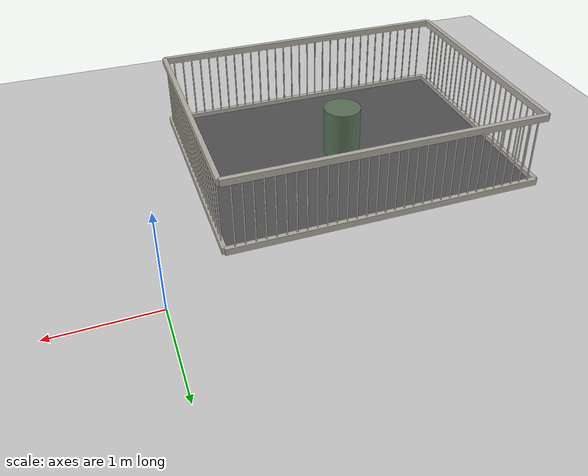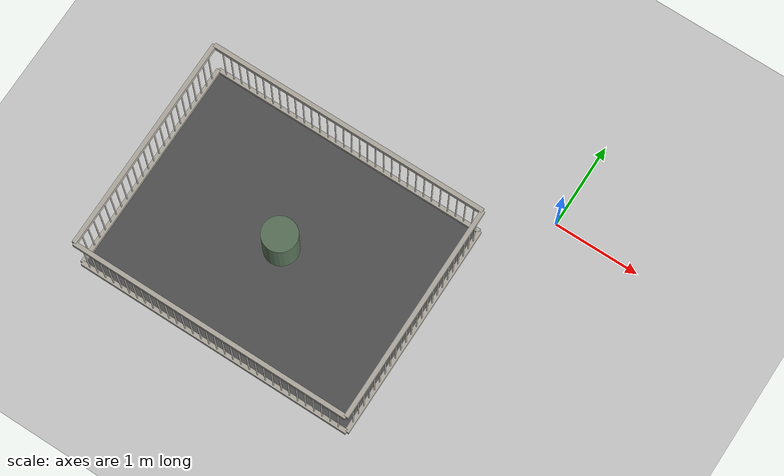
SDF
<sdf version="1.9">
 <world name="pig_pen_16units_world">
  <model name="ground_plane">
   <static>true</static>
   <link name="link">
    <collision name="collision">
     <geometry><plane><normal>0 0 1</normal><size>30 30</size></plane></geometry>
     <surface><friction><ode><mu>1.0</mu><mu2>1.0</mu2></ode></friction></surface>
    </collision>
    <visual name="visual">
     <geometry><plane><normal>0 0 1</normal><size>30 30</size></plane></geometry>
     <material>
      <ambient>0.8 0.8 0.8 1</ambient>
      <diffuse>0.8 0.8 0.8 1</diffuse>
      <specular>0.2 0.2 0.2 1</specular>
     </material>
    </visual>
   </link>
  </model>
  <model name="pen3">
   <pose>-2.275 -1.795 0 0 0 0</pose>
   <static>true</static>
   <link name="floor">
    <pose>0 0 0.01 0 0 0</pose>
    <collision name="collision"><geometry><box><size>3.30 2.55 0.02</size></box></geometry></collision>
    <visual name="visual">
     <geometry><box><size>3.30 2.55 0.02</size></box></geometry>
     <material>
      <ambient>0.25 0.25 0.25 1</ambient>
      <diffuse>0.32 0.32 0.32 1</diffuse>
      <specular>0.05 0.05 0.05 1</specular>
     </material>
    </visual>
   </link>
   <link name="left_wall">
    <pose>0 1.275 0.415 0 0 0</pose>
    <collision name="top_rail_col">
     <pose>0 0 0.38 0 0 0</pose>
     <geometry><box><size>3.30 0.05 0.07</size></box></geometry>
    </collision>
    <visual name="top_rail_vis">
     <pose>0 0 0.38 0 0 0</pose>
     <geometry><box><size>3.30 0.05 0.07</size></box></geometry>
     <material><ambient>0.70 0.68 0.64 1</ambient><diffuse>0.70 0.68 0.64 1</diffuse></material>
    </visual>
    <collision name="bottom_rail_col">
     <pose>0 0 -0.38 0 0 0</pose>
     <geometry><box><size>3.30 0.05 0.07</size></box></geometry>
    </collision>
    <visual name="bottom_rail_vis">
     <pose>0 0 -0.38 0 0 0</pose>
     <geometry><box><size>3.30 0.05 0.07</size></box></geometry>
     <material><ambient>0.70 0.68 0.64 1</ambient><diffuse>0.70 0.68 0.64 1</diffuse></material>
    </visual>
    <collision name="bar_01_col">
     <pose>-1.55 0 0 0 0 0</pose>
     <geometry><cylinder><radius>0.0075</radius><length>0.69</length></cylinder></geometry>
    </collision>
    <visual name="bar_01_vis">
     <pose>-1.55 0 0 0 0 0</pose>
     <geometry><cylinder><radius>0.0075</radius><length>0.69</length></cylinder></geometry>
     <material><ambient>0.70 0.68 0.64 1</ambient><diffuse>0.70 0.68 0.64 1</diffuse></material>
    </visual>
    <collision name="bar_02_col">
     <pose>-1.45 0 0 0 0 0</pose>
     <geometry><cylinder><radius>0.0075</radius><length>0.69</length></cylinder></geometry>
    </collision>
    <visual name="bar_02_vis">
     <pose>-1.45 0 0 0 0 0</pose>
     <geometry><cylinder><radius>0.0075</radius><length>0.69</length></cylinder></geometry>
     <material><ambient>0.70 0.68 0.64 1</ambient><diffuse>0.70 0.68 0.64 1</diffuse></material>
    </visual>
    <collision name="bar_03_col">
     <pose>-1.35 0 0 0 0 0</pose>
     <geometry><cylinder><radius>0.0075</radius><length>0.69</length></cylinder></geometry>
    </collision>
    <visual name="bar_03_vis">
     <pose>-1.35 0 0 0 0 0</pose>
     <geometry><cylinder><radius>0.0075</radius><length>0.69</length></cylinder></geometry>
     <material><ambient>0.70 0.68 0.64 1</ambient><diffuse>0.70 0.68 0.64 1</diffuse></material>
    </visual>
    <collision name="bar_04_col">
     <pose>-1.25 0 0 0 0 0</pose>
     <geometry><cylinder><radius>0.0075</radius><length>0.69</length></cylinder></geometry>
    </collision>
    <visual name="bar_04_vis">
     <pose>-1.25 0 0 0 0 0</pose>
     <geometry><cylinder><radius>0.0075</radius><length>0.69</length></cylinder></geometry>
     <material><ambient>0.70 0.68 0.64 1</ambient><diffuse>0.70 0.68 0.64 1</diffuse></material>
    </visual>
    <collision name="bar_05_col">
     <pose>-1.15 0 0 0 0 0</pose>
     <geometry><cylinder><radius>0.0075</radius><length>0.69</length></cylinder></geometry>
    </collision>
    <visual name="bar_05_vis">
     <pose>-1.15 0 0 0 0 0</pose>
     <geometry><cylinder><radius>0.0075</radius><length>0.69</length></cylinder></geometry>
     <material><ambient>0.70 0.68 0.64 1</ambient><diffuse>0.70 0.68 0.64 1</diffuse></material>
    </visual>
    <collision name="bar_06_col">
     <pose>-1.05 0 0 0 0 0</pose>
     <geometry><cylinder><radius>0.0075</radius><length>0.69</length></cylinder></geometry>
    </collision>
    <visual name="bar_06_vis">
     <pose>-1.05 0 0 0 0 0</pose>
     <geometry><cylinder><radius>0.0075</radius><length>0.69</length></cylinder></geometry>
     <material><ambient>0.70 0.68 0.64 1</ambient><diffuse>0.70 0.68 0.64 1</diffuse></material>
    </visual>
    <collision name="bar_07_col">
     <pose>-0.95 0 0 0 0 0</pose>
     <geometry><cylinder><radius>0.0075</radius><length>0.69</length></cylinder></geometry>
    </collision>
    <visual name="bar_07_vis">
     <pose>-0.95 0 0 0 0 0</pose>
     <geometry><cylinder><radius>0.0075</radius><length>0.69</length></cylinder></geometry>
     <material><ambient>0.70 0.68 0.64 1</ambient><diffuse>0.70 0.68 0.64 1</diffuse></material>
    </visual>
    <collision name="bar_08_col">
     <pose>-0.85 0 0 0 0 0</pose>
     <geometry><cylinder><radius>0.0075</radius><length>0.69</length></cylinder></geometry>
    </collision>
    <visual name="bar_08_vis">
     <pose>-0.85 0 0 0 0 0</pose>
     <geometry><cylinder><radius>0.0075</radius><length>0.69</length></cylinder></geometry>
     <material><ambient>0.70 0.68 0.64 1</ambient><diffuse>0.70 0.68 0.64 1</diffuse></material>
    </visual>
    <collision name="bar_09_col">
     <pose>-0.75 0 0 0 0 0</pose>
     <geometry><cylinder><radius>0.0075</radius><length>0.69</length></cylinder></geometry>
    </collision>
    <visual name="bar_09_vis">
     <pose>-0.75 0 0 0 0 0</pose>
     <geometry><cylinder><radius>0.0075</radius><length>0.69</length></cylinder></geometry>
     <material><ambient>0.70 0.68 0.64 1</ambient><diffuse>0.70 0.68 0.64 1</diffuse></material>
    </visual>
    <collision name="bar_10_col">
     <pose>-0.65 0 0 0 0 0</pose>
     <geometry><cylinder><radius>0.0075</radius><length>0.69</length></cylinder></geometry>
    </collision>
    <visual name="bar_10_vis">
     <pose>-0.65 0 0 0 0 0</pose>
     <geometry><cylinder><radius>0.0075</radius><length>0.69</length></cylinder></geometry>
     <material><ambient>0.70 0.68 0.64 1</ambient><diffuse>0.70 0.68 0.64 1</diffuse></material>
    </visual>
    <collision name="bar_11_col">
     <pose>-0.55 0 0 0 0 0</pose>
     <geometry><cylinder><radius>0.0075</radius><length>0.69</length></cylinder></geometry>
    </collision>
    <visual name="bar_11_vis">
     <pose>-0.55 0 0 0 0 0</pose>
     <geometry><cylinder><radius>0.0075</radius><length>0.69</length></cylinder></geometry>
     <material><ambient>0.70 0.68 0.64 1</ambient><diffuse>0.70 0.68 0.64 1</diffuse></material>
    </visual>
    <collision name="bar_12_col">
     <pose>-0.45 0 0 0 0 0</pose>
     <geometry><cylinder><radius>0.0075</radius><length>0.69</length></cylinder></geometry>
    </collision>
    <visual name="bar_12_vis">
     <pose>-0.45 0 0 0 0 0</pose>
     <geometry><cylinder><radius>0.0075</radius><length>0.69</length></cylinder></geometry>
     <material><ambient>0.70 0.68 0.64 1</ambient><diffuse>0.70 0.68 0.64 1</diffuse></material>
    </visual>
    <collision name="bar_13_col">
     <pose>-0.35 0 0 0 0 0</pose>
     <geometry><cylinder><radius>0.0075</radius><length>0.69</length></cylinder></geometry>
    </collision>
    <visual name="bar_13_vis">
     <pose>-0.35 0 0 0 0 0</pose>
     <geometry><cylinder><radius>0.0075</radius><length>0.69</length></cylinder></geometry>
     <material><ambient>0.70 0.68 0.64 1</ambient><diffuse>0.70 0.68 0.64 1</diffuse></material>
    </visual>
    <collision name="bar_14_col">
     <pose>-0.25 0 0 0 0 0</pose>
     <geometry><cylinder><radius>0.0075</radius><length>0.69</length></cylinder></geometry>
    </collision>
    <visual name="bar_14_vis">
     <pose>-0.25 0 0 0 0 0</pose>
     <geometry><cylinder><radius>0.0075</radius><length>0.69</length></cylinder></geometry>
     <material><ambient>0.70 0.68 0.64 1</ambient><diffuse>0.70 0.68 0.64 1</diffuse></material>
    </visual>
    <collision name="bar_15_col">
     <pose>-0.15 0 0 0 0 0</pose>
     <geometry><cylinder><radius>0.0075</radius><length>0.69</length></cylinder></geometry>
    </collision>
    <visual name="bar_15_vis">
     <pose>-0.15 0 0 0 0 0</pose>
     <geometry><cylinder><radius>0.0075</radius><length>0.69</length></cylinder></geometry>
     <material><ambient>0.70 0.68 0.64 1</ambient><diffuse>0.70 0.68 0.64 1</diffuse></material>
    </visual>
    <collision name="bar_16_col">
     <pose>-0.05 0 0 0 0 0</pose>
     <geometry><cylinder><radius>0.0075</radius><length>0.69</length></cylinder></geometry>
    </collision>
    <visual name="bar_16_vis">
     <pose>-0.05 0 0 0 0 0</pose>
     <geometry><cylinder><radius>0.0075</radius><length>0.69</length></cylinder></geometry>
     <material><ambient>0.70 0.68 0.64 1</ambient><diffuse>0.70 0.68 0.64 1</diffuse></material>
    </visual>
    <collision name="bar_17_col">
     <pose>0.05 0 0 0 0 0</pose>
     <geometry><cylinder><radius>0.0075</radius><length>0.69</length></cylinder></geometry>
    </collision>
    <visual name="bar_17_vis">
     <pose>0.05 0 0 0 0 0</pose>
     <geometry><cylinder><radius>0.0075</radius><length>0.69</length></cylinder></geometry>
     <material><ambient>0.70 0.68 0.64 1</ambient><diffuse>0.70 0.68 0.64 1</diffuse></material>
    </visual>
    <collision name="bar_18_col">
     <pose>0.15 0 0 0 0 0</pose>
     <geometry><cylinder><radius>0.0075</radius><length>0.69</length></cylinder></geometry>
    </collision>
    <visual name="bar_18_vis">
     <pose>0.15 0 0 0 0 0</pose>
     <geometry><cylinder><radius>0.0075</radius><length>0.69</length></cylinder></geometry>
     <material><ambient>0.70 0.68 0.64 1</ambient><diffuse>0.70 0.68 0.64 1</diffuse></material>
    </visual>
    <collision name="bar_19_col">
     <pose>0.25 0 0 0 0 0</pose>
     <geometry><cylinder><radius>0.0075</radius><length>0.69</length></cylinder></geometry>
    </collision>
    <visual name="bar_19_vis">
     <pose>0.25 0 0 0 0 0</pose>
     <geometry><cylinder><radius>0.0075</radius><length>0.69</length></cylinder></geometry>
     <material><ambient>0.70 0.68 0.64 1</ambient><diffuse>0.70 0.68 0.64 1</diffuse></material>
    </visual>
    <collision name="bar_20_col">
     <pose>0.35 0 0 0 0 0</pose>
     <geometry><cylinder><radius>0.0075</radius><length>0.69</length></cylinder></geometry>
    </collision>
    <visual name="bar_20_vis">
     <pose>0.35 0 0 0 0 0</pose>
     <geometry><cylinder><radius>0.0075</radius><length>0.69</length></cylinder></geometry>
     <material><ambient>0.70 0.68 0.64 1</ambient><diffuse>0.70 0.68 0.64 1</diffuse></material>
    </visual>
    <collision name="bar_21_col">
     <pose>0.45 0 0 0 0 0</pose>
     <geometry><cylinder><radius>0.0075</radius><length>0.69</length></cylinder></geometry>
    </collision>
    <visual name="bar_21_vis">
     <pose>0.45 0 0 0 0 0</pose>
     <geometry><cylinder><radius>0.0075</radius><length>0.69</length></cylinder></geometry>
     <material><ambient>0.70 0.68 0.64 1</ambient><diffuse>0.70 0.68 0.64 1</diffuse></material>
    </visual>
    <collision name="bar_22_col">
     <pose>0.55 0 0 0 0 0</pose>
     <geometry><cylinder><radius>0.0075</radius><length>0.69</length></cylinder></geometry>
    </collision>
    <visual name="bar_22_vis">
     <pose>0.55 0 0 0 0 0</pose>
     <geometry><cylinder><radius>0.0075</radius><length>0.69</length></cylinder></geometry>
     <material><ambient>0.70 0.68 0.64 1</ambient><diffuse>0.70 0.68 0.64 1</diffuse></material>
    </visual>
    <collision name="bar_23_col">
     <pose>0.65 0 0 0 0 0</pose>
     <geometry><cylinder><radius>0.0075</radius><length>0.69</length></cylinder></geometry>
    </collision>
    <visual name="bar_23_vis">
     <pose>0.65 0 0 0 0 0</pose>
     <geometry><cylinder><radius>0.0075</radius><length>0.69</length></cylinder></geometry>
     <material><ambient>0.70 0.68 0.64 1</ambient><diffuse>0.70 0.68 0.64 1</diffuse></material>
    </visual>
    <collision name="bar_24_col">
     <pose>0.75 0 0 0 0 0</pose>
     <geometry><cylinder><radius>0.0075</radius><length>0.69</length></cylinder></geometry>
    </collision>
    <visual name="bar_24_vis">
     <pose>0.75 0 0 0 0 0</pose>
     <geometry><cylinder><radius>0.0075</radius><length>0.69</length></cylinder></geometry>
     <material><ambient>0.70 0.68 0.64 1</ambient><diffuse>0.70 0.68 0.64 1</diffuse></material>
    </visual>
    <collision name="bar_25_col">
     <pose>0.85 0 0 0 0 0</pose>
     <geometry><cylinder><radius>0.0075</radius><length>0.69</length></cylinder></geometry>
    </collision>
    <visual name="bar_25_vis">
     <pose>0.85 0 0 0 0 0</pose>
     <geometry><cylinder><radius>0.0075</radius><length>0.69</length></cylinder></geometry>
     <material><ambient>0.70 0.68 0.64 1</ambient><diffuse>0.70 0.68 0.64 1</diffuse></material>
    </visual>
    <collision name="bar_26_col">
     <pose>0.95 0 0 0 0 0</pose>
     <geometry><cylinder><radius>0.0075</radius><length>0.69</length></cylinder></geometry>
    </collision>
    <visual name="bar_26_vis">
     <pose>0.95 0 0 0 0 0</pose>
     <geometry><cylinder><radius>0.0075</radius><length>0.69</length></cylinder></geometry>
     <material><ambient>0.70 0.68 0.64 1</ambient><diffuse>0.70 0.68 0.64 1</diffuse></material>
    </visual>
    <collision name="bar_27_col">
     <pose>1.05 0 0 0 0 0</pose>
     <geometry><cylinder><radius>0.0075</radius><length>0.69</length></cylinder></geometry>
    </collision>
    <visual name="bar_27_vis">
     <pose>1.05 0 0 0 0 0</pose>
     <geometry><cylinder><radius>0.0075</radius><length>0.69</length></cylinder></geometry>
     <material><ambient>0.70 0.68 0.64 1</ambient><diffuse>0.70 0.68 0.64 1</diffuse></material>
    </visual>
    <collision name="bar_28_col">
     <pose>1.15 0 0 0 0 0</pose>
     <geometry><cylinder><radius>0.0075</radius><length>0.69</length></cylinder></geometry>
    </collision>
    <visual name="bar_28_vis">
     <pose>1.15 0 0 0 0 0</pose>
     <geometry><cylinder><radius>0.0075</radius><length>0.69</length></cylinder></geometry>
     <material><ambient>0.70 0.68 0.64 1</ambient><diffuse>0.70 0.68 0.64 1</diffuse></material>
    </visual>
    <collision name="bar_29_col">
     <pose>1.25 0 0 0 0 0</pose>
     <geometry><cylinder><radius>0.0075</radius><length>0.69</length></cylinder></geometry>
    </collision>
    <visual name="bar_29_vis">
     <pose>1.25 0 0 0 0 0</pose>
     <geometry><cylinder><radius>0.0075</radius><length>0.69</length></cylinder></geometry>
     <material><ambient>0.70 0.68 0.64 1</ambient><diffuse>0.70 0.68 0.64 1</diffuse></material>
    </visual>
    <collision name="bar_30_col">
     <pose>1.35 0 0 0 0 0</pose>
     <geometry><cylinder><radius>0.0075</radius><length>0.69</length></cylinder></geometry>
    </collision>
    <visual name="bar_30_vis">
     <pose>1.35 0 0 0 0 0</pose>
     <geometry><cylinder><radius>0.0075</radius><length>0.69</length></cylinder></geometry>
     <material><ambient>0.70 0.68 0.64 1</ambient><diffuse>0.70 0.68 0.64 1</diffuse></material>
    </visual>
    <collision name="bar_31_col">
     <pose>1.45 0 0 0 0 0</pose>
     <geometry><cylinder><radius>0.0075</radius><length>0.69</length></cylinder></geometry>
    </collision>
    <visual name="bar_31_vis">
     <pose>1.45 0 0 0 0 0</pose>
     <geometry><cylinder><radius>0.0075</radius><length>0.69</length></cylinder></geometry>
     <material><ambient>0.70 0.68 0.64 1</ambient><diffuse>0.70 0.68 0.64 1</diffuse></material>
    </visual>
    <collision name="bar_32_col">
     <pose>1.55 0 0 0 0 0</pose>
     <geometry><cylinder><radius>0.0075</radius><length>0.69</length></cylinder></geometry>
    </collision>
    <visual name="bar_32_vis">
     <pose>1.55 0 0 0 0 0</pose>
     <geometry><cylinder><radius>0.0075</radius><length>0.69</length></cylinder></geometry>
     <material><ambient>0.70 0.68 0.64 1</ambient><diffuse>0.70 0.68 0.64 1</diffuse></material>
    </visual>
   </link>
   <link name="right_wall">
    <pose>0 -1.275 0.415 0 0 0</pose>
    <collision name="top_rail_col">
     <pose>0 0 0.38 0 0 0</pose>
     <geometry><box><size>3.30 0.05 0.07</size></box></geometry>
    </collision>
    <visual name="top_rail_vis">
     <pose>0 0 0.38 0 0 0</pose>
     <geometry><box><size>3.30 0.05 0.07</size></box></geometry>
     <material><ambient>0.70 0.68 0.64 1</ambient><diffuse>0.70 0.68 0.64 1</diffuse></material>
    </visual>
    <collision name="bottom_rail_col">
     <pose>0 0 -0.38 0 0 0</pose>
     <geometry><box><size>3.30 0.05 0.07</size></box></geometry>
    </collision>
    <visual name="bottom_rail_vis">
     <pose>0 0 -0.38 0 0 0</pose>
     <geometry><box><size>3.30 0.05 0.07</size></box></geometry>
     <material><ambient>0.70 0.68 0.64 1</ambient><diffuse>0.70 0.68 0.64 1</diffuse></material>
    </visual>
    <collision name="bar_01_col">
     <pose>-1.55 0 0 0 0 0</pose>
     <geometry><cylinder><radius>0.0075</radius><length>0.69</length></cylinder></geometry>
    </collision>
    <visual name="bar_01_vis">
     <pose>-1.55 0 0 0 0 0</pose>
     <geometry><cylinder><radius>0.0075</radius><length>0.69</length></cylinder></geometry>
     <material><ambient>0.70 0.68 0.64 1</ambient><diffuse>0.70 0.68 0.64 1</diffuse></material>
    </visual>
    <collision name="bar_02_col">
     <pose>-1.45 0 0 0 0 0</pose>
     <geometry><cylinder><radius>0.0075</radius><length>0.69</length></cylinder></geometry>
    </collision>
    <visual name="bar_02_vis">
     <pose>-1.45 0 0 0 0 0</pose>
     <geometry><cylinder><radius>0.0075</radius><length>0.69</length></cylinder></geometry>
     <material><ambient>0.70 0.68 0.64 1</ambient><diffuse>0.70 0.68 0.64 1</diffuse></material>
    </visual>
    <collision name="bar_03_col">
     <pose>-1.35 0 0 0 0 0</pose>
     <geometry><cylinder><radius>0.0075</radius><length>0.69</length></cylinder></geometry>
    </collision>
    <visual name="bar_03_vis">
     <pose>-1.35 0 0 0 0 0</pose>
     <geometry><cylinder><radius>0.0075</radius><length>0.69</length></cylinder></geometry>
     <material><ambient>0.70 0.68 0.64 1</ambient><diffuse>0.70 0.68 0.64 1</diffuse></material>
    </visual>
    <collision name="bar_04_col">
     <pose>-1.25 0 0 0 0 0</pose>
     <geometry><cylinder><radius>0.0075</radius><length>0.69</length></cylinder></geometry>
    </collision>
    <visual name="bar_04_vis">
     <pose>-1.25 0 0 0 0 0</pose>
     <geometry><cylinder><radius>0.0075</radius><length>0.69</length></cylinder></geometry>
     <material><ambient>0.70 0.68 0.64 1</ambient><diffuse>0.70 0.68 0.64 1</diffuse></material>
    </visual>
    <collision name="bar_05_col">
     <pose>-1.15 0 0 0 0 0</pose>
     <geometry><cylinder><radius>0.0075</radius><length>0.69</length></cylinder></geometry>
    </collision>
    <visual name="bar_05_vis">
     <pose>-1.15 0 0 0 0 0</pose>
     <geometry><cylinder><radius>0.0075</radius><length>0.69</length></cylinder></geometry>
     <material><ambient>0.70 0.68 0.64 1</ambient><diffuse>0.70 0.68 0.64 1</diffuse></material>
    </visual>
    <collision name="bar_06_col">
     <pose>-1.05 0 0 0 0 0</pose>
     <geometry><cylinder><radius>0.0075</radius><length>0.69</length></cylinder></geometry>
    </collision>
    <visual name="bar_06_vis">
     <pose>-1.05 0 0 0 0 0</pose>
     <geometry><cylinder><radius>0.0075</radius><length>0.69</length></cylinder></geometry>
     <material><ambient>0.70 0.68 0.64 1</ambient><diffuse>0.70 0.68 0.64 1</diffuse></material>
    </visual>
    <collision name="bar_07_col">
     <pose>-0.95 0 0 0 0 0</pose>
     <geometry><cylinder><radius>0.0075</radius><length>0.69</length></cylinder></geometry>
    </collision>
    <visual name="bar_07_vis">
     <pose>-0.95 0 0 0 0 0</pose>
     <geometry><cylinder><radius>0.0075</radius><length>0.69</length></cylinder></geometry>
     <material><ambient>0.70 0.68 0.64 1</ambient><diffuse>0.70 0.68 0.64 1</diffuse></material>
    </visual>
    <collision name="bar_08_col">
     <pose>-0.85 0 0 0 0 0</pose>
     <geometry><cylinder><radius>0.0075</radius><length>0.69</length></cylinder></geometry>
    </collision>
    <visual name="bar_08_vis">
     <pose>-0.85 0 0 0 0 0</pose>
     <geometry><cylinder><radius>0.0075</radius><length>0.69</length></cylinder></geometry>
     <material><ambient>0.70 0.68 0.64 1</ambient><diffuse>0.70 0.68 0.64 1</diffuse></material>
    </visual>
    <collision name="bar_09_col">
     <pose>-0.75 0 0 0 0 0</pose>
     <geometry><cylinder><radius>0.0075</radius><length>0.69</length></cylinder></geometry>
    </collision>
    <visual name="bar_09_vis">
     <pose>-0.75 0 0 0 0 0</pose>
     <geometry><cylinder><radius>0.0075</radius><length>0.69</length></cylinder></geometry>
     <material><ambient>0.70 0.68 0.64 1</ambient><diffuse>0.70 0.68 0.64 1</diffuse></material>
    </visual>
    <collision name="bar_10_col">
     <pose>-0.65 0 0 0 0 0</pose>
     <geometry><cylinder><radius>0.0075</radius><length>0.69</length></cylinder></geometry>
    </collision>
    <visual name="bar_10_vis">
     <pose>-0.65 0 0 0 0 0</pose>
     <geometry><cylinder><radius>0.0075</radius><length>0.69</length></cylinder></geometry>
     <material><ambient>0.70 0.68 0.64 1</ambient><diffuse>0.70 0.68 0.64 1</diffuse></material>
    </visual>
    <collision name="bar_11_col">
     <pose>-0.55 0 0 0 0 0</pose>
     <geometry><cylinder><radius>0.0075</radius><length>0.69</length></cylinder></geometry>
    </collision>
    <visual name="bar_11_vis">
     <pose>-0.55 0 0 0 0 0</pose>
     <geometry><cylinder><radius>0.0075</radius><length>0.69</length></cylinder></geometry>
     <material><ambient>0.70 0.68 0.64 1</ambient><diffuse>0.70 0.68 0.64 1</diffuse></material>
    </visual>
    <collision name="bar_12_col">
     <pose>-0.45 0 0 0 0 0</pose>
     <geometry><cylinder><radius>0.0075</radius><length>0.69</length></cylinder></geometry>
    </collision>
    <visual name="bar_12_vis">
     <pose>-0.45 0 0 0 0 0</pose>
     <geometry><cylinder><radius>0.0075</radius><length>0.69</length></cylinder></geometry>
     <material><ambient>0.70 0.68 0.64 1</ambient><diffuse>0.70 0.68 0.64 1</diffuse></material>
    </visual>
    <collision name="bar_13_col">
     <pose>-0.35 0 0 0 0 0</pose>
     <geometry><cylinder><radius>0.0075</radius><length>0.69</length></cylinder></geometry>
    </collision>
    <visual name="bar_13_vis">
     <pose>-0.35 0 0 0 0 0</pose>
     <geometry><cylinder><radius>0.0075</radius><length>0.69</length></cylinder></geometry>
     <material><ambient>0.70 0.68 0.64 1</ambient><diffuse>0.70 0.68 0.64 1</diffuse></material>
    </visual>
    <collision name="bar_14_col">
     <pose>-0.25 0 0 0 0 0</pose>
     <geometry><cylinder><radius>0.0075</radius><length>0.69</length></cylinder></geometry>
    </collision>
    <visual name="bar_14_vis">
     <pose>-0.25 0 0 0 0 0</pose>
     <geometry><cylinder><radius>0.0075</radius><length>0.69</length></cylinder></geometry>
     <material><ambient>0.70 0.68 0.64 1</ambient><diffuse>0.70 0.68 0.64 1</diffuse></material>
    </visual>
    <collision name="bar_15_col">
     <pose>-0.15 0 0 0 0 0</pose>
     <geometry><cylinder><radius>0.0075</radius><length>0.69</length></cylinder></geometry>
    </collision>
    <visual name="bar_15_vis">
     <pose>-0.15 0 0 0 0 0</pose>
     <geometry><cylinder><radius>0.0075</radius><length>0.69</length></cylinder></geometry>
     <material><ambient>0.70 0.68 0.64 1</ambient><diffuse>0.70 0.68 0.64 1</diffuse></material>
    </visual>
    <collision name="bar_16_col">
     <pose>-0.05 0 0 0 0 0</pose>
     <geometry><cylinder><radius>0.0075</radius><length>0.69</length></cylinder></geometry>
    </collision>
    <visual name="bar_16_vis">
     <pose>-0.05 0 0 0 0 0</pose>
     <geometry><cylinder><radius>0.0075</radius><length>0.69</length></cylinder></geometry>
     <material><ambient>0.70 0.68 0.64 1</ambient><diffuse>0.70 0.68 0.64 1</diffuse></material>
    </visual>
    <collision name="bar_17_col">
     <pose>0.05 0 0 0 0 0</pose>
     <geometry><cylinder><radius>0.0075</radius><length>0.69</length></cylinder></geometry>
    </collision>
    <visual name="bar_17_vis">
     <pose>0.05 0 0 0 0 0</pose>
     <geometry><cylinder><radius>0.0075</radius><length>0.69</length></cylinder></geometry>
     <material><ambient>0.70 0.68 0.64 1</ambient><diffuse>0.70 0.68 0.64 1</diffuse></material>
    </visual>
    <collision name="bar_18_col">
     <pose>0.15 0 0 0 0 0</pose>
     <geometry><cylinder><radius>0.0075</radius><length>0.69</length></cylinder></geometry>
    </collision>
    <visual name="bar_18_vis">
     <pose>0.15 0 0 0 0 0</pose>
     <geometry><cylinder><radius>0.0075</radius><length>0.69</length></cylinder></geometry>
     <material><ambient>0.70 0.68 0.64 1</ambient><diffuse>0.70 0.68 0.64 1</diffuse></material>
    </visual>
    <collision name="bar_19_col">
     <pose>0.25 0 0 0 0 0</pose>
     <geometry><cylinder><radius>0.0075</radius><length>0.69</length></cylinder></geometry>
    </collision>
    <visual name="bar_19_vis">
     <pose>0.25 0 0 0 0 0</pose>
     <geometry><cylinder><radius>0.0075</radius><length>0.69</length></cylinder></geometry>
     <material><ambient>0.70 0.68 0.64 1</ambient><diffuse>0.70 0.68 0.64 1</diffuse></material>
    </visual>
    <collision name="bar_20_col">
     <pose>0.35 0 0 0 0 0</pose>
     <geometry><cylinder><radius>0.0075</radius><length>0.69</length></cylinder></geometry>
    </collision>
    <visual name="bar_20_vis">
     <pose>0.35 0 0 0 0 0</pose>
     <geometry><cylinder><radius>0.0075</radius><length>0.69</length></cylinder></geometry>
     <material><ambient>0.70 0.68 0.64 1</ambient><diffuse>0.70 0.68 0.64 1</diffuse></material>
    </visual>
    <collision name="bar_21_col">
     <pose>0.45 0 0 0 0 0</pose>
     <geometry><cylinder><radius>0.0075</radius><length>0.69</length></cylinder></geometry>
    </collision>
    <visual name="bar_21_vis">
     <pose>0.45 0 0 0 0 0</pose>
     <geometry><cylinder><radius>0.0075</radius><length>0.69</length></cylinder></geometry>
     <material><ambient>0.70 0.68 0.64 1</ambient><diffuse>0.70 0.68 0.64 1</diffuse></material>
    </visual>
    <collision name="bar_22_col">
     <pose>0.55 0 0 0 0 0</pose>
     <geometry><cylinder><radius>0.0075</radius><length>0.69</length></cylinder></geometry>
    </collision>
    <visual name="bar_22_vis">
     <pose>0.55 0 0 0 0 0</pose>
     <geometry><cylinder><radius>0.0075</radius><length>0.69</length></cylinder></geometry>
     <material><ambient>0.70 0.68 0.64 1</ambient><diffuse>0.70 0.68 0.64 1</diffuse></material>
    </visual>
    <collision name="bar_23_col">
     <pose>0.65 0 0 0 0 0</pose>
     <geometry><cylinder><radius>0.0075</radius><length>0.69</length></cylinder></geometry>
    </collision>
    <visual name="bar_23_vis">
     <pose>0.65 0 0 0 0 0</pose>
     <geometry><cylinder><radius>0.0075</radius><length>0.69</length></cylinder></geometry>
     <material><ambient>0.70 0.68 0.64 1</ambient><diffuse>0.70 0.68 0.64 1</diffuse></material>
    </visual>
    <collision name="bar_24_col">
     <pose>0.75 0 0 0 0 0</pose>
     <geometry><cylinder><radius>0.0075</radius><length>0.69</length></cylinder></geometry>
    </collision>
    <visual name="bar_24_vis">
     <pose>0.75 0 0 0 0 0</pose>
     <geometry><cylinder><radius>0.0075</radius><length>0.69</length></cylinder></geometry>
     <material><ambient>0.70 0.68 0.64 1</ambient><diffuse>0.70 0.68 0.64 1</diffuse></material>
    </visual>
    <collision name="bar_25_col">
     <pose>0.85 0 0 0 0 0</pose>
     <geometry><cylinder><radius>0.0075</radius><length>0.69</length></cylinder></geometry>
    </collision>
    <visual name="bar_25_vis">
     <pose>0.85 0 0 0 0 0</pose>
     <geometry><cylinder><radius>0.0075</radius><length>0.69</length></cylinder></geometry>
     <material><ambient>0.70 0.68 0.64 1</ambient><diffuse>0.70 0.68 0.64 1</diffuse></material>
    </visual>
    <collision name="bar_26_col">
     <pose>0.95 0 0 0 0 0</pose>
     <geometry><cylinder><radius>0.0075</radius><length>0.69</length></cylinder></geometry>
    </collision>
    <visual name="bar_26_vis">
     <pose>0.95 0 0 0 0 0</pose>
     <geometry><cylinder><radius>0.0075</radius><length>0.69</length></cylinder></geometry>
     <material><ambient>0.70 0.68 0.64 1</ambient><diffuse>0.70 0.68 0.64 1</diffuse></material>
    </visual>
    <collision name="bar_27_col">
     <pose>1.05 0 0 0 0 0</pose>
     <geometry><cylinder><radius>0.0075</radius><length>0.69</length></cylinder></geometry>
    </collision>
    <visual name="bar_27_vis">
     <pose>1.05 0 0 0 0 0</pose>
     <geometry><cylinder><radius>0.0075</radius><length>0.69</length></cylinder></geometry>
     <material><ambient>0.70 0.68 0.64 1</ambient><diffuse>0.70 0.68 0.64 1</diffuse></material>
    </visual>
    <collision name="bar_28_col">
     <pose>1.15 0 0 0 0 0</pose>
     <geometry><cylinder><radius>0.0075</radius><length>0.69</length></cylinder></geometry>
    </collision>
    <visual name="bar_28_vis">
     <pose>1.15 0 0 0 0 0</pose>
     <geometry><cylinder><radius>0.0075</radius><length>0.69</length></cylinder></geometry>
     <material><ambient>0.70 0.68 0.64 1</ambient><diffuse>0.70 0.68 0.64 1</diffuse></material>
    </visual>
    <collision name="bar_29_col">
     <pose>1.25 0 0 0 0 0</pose>
     <geometry><cylinder><radius>0.0075</radius><length>0.69</length></cylinder></geometry>
    </collision>
    <visual name="bar_29_vis">
     <pose>1.25 0 0 0 0 0</pose>
     <geometry><cylinder><radius>0.0075</radius><length>0.69</length></cylinder></geometry>
     <material><ambient>0.70 0.68 0.64 1</ambient><diffuse>0.70 0.68 0.64 1</diffuse></material>
    </visual>
    <collision name="bar_30_col">
     <pose>1.35 0 0 0 0 0</pose>
     <geometry><cylinder><radius>0.0075</radius><length>0.69</length></cylinder></geometry>
    </collision>
    <visual name="bar_30_vis">
     <pose>1.35 0 0 0 0 0</pose>
     <geometry><cylinder><radius>0.0075</radius><length>0.69</length></cylinder></geometry>
     <material><ambient>0.70 0.68 0.64 1</ambient><diffuse>0.70 0.68 0.64 1</diffuse></material>
    </visual>
    <collision name="bar_31_col">
     <pose>1.45 0 0 0 0 0</pose>
     <geometry><cylinder><radius>0.0075</radius><length>0.69</length></cylinder></geometry>
    </collision>
    <visual name="bar_31_vis">
     <pose>1.45 0 0 0 0 0</pose>
     <geometry><cylinder><radius>0.0075</radius><length>0.69</length></cylinder></geometry>
     <material><ambient>0.70 0.68 0.64 1</ambient><diffuse>0.70 0.68 0.64 1</diffuse></material>
    </visual>
    <collision name="bar_32_col">
     <pose>1.55 0 0 0 0 0</pose>
     <geometry><cylinder><radius>0.0075</radius><length>0.69</length></cylinder></geometry>
    </collision>
    <visual name="bar_32_vis">
     <pose>1.55 0 0 0 0 0</pose>
     <geometry><cylinder><radius>0.0075</radius><length>0.69</length></cylinder></geometry>
     <material><ambient>0.70 0.68 0.64 1</ambient><diffuse>0.70 0.68 0.64 1</diffuse></material>
    </visual>
   </link>
   <link name="back_wall">
    <pose>1.65 0 0.415 0 0 0</pose>
    <collision name="top_rail_col">
     <pose>0 0 0.38 0 0 0</pose>
     <geometry><box><size>0.05 2.55 0.07</size></box></geometry>
    </collision>
    <visual name="top_rail_vis">
     <pose>0 0 0.38 0 0 0</pose>
     <geometry><box><size>0.05 2.55 0.07</size></box></geometry>
     <material><ambient>0.70 0.68 0.64 1</ambient><diffuse>0.70 0.68 0.64 1</diffuse></material>
    </visual>
    <collision name="bottom_rail_col">
     <pose>0 0 -0.38 0 0 0</pose>
     <geometry><box><size>0.05 2.55 0.07</size></box></geometry>
    </collision>
    <visual name="bottom_rail_vis">
     <pose>0 0 -0.38 0 0 0</pose>
     <geometry><box><size>0.05 2.55 0.07</size></box></geometry>
     <material><ambient>0.70 0.68 0.64 1</ambient><diffuse>0.70 0.68 0.64 1</diffuse></material>
    </visual>
    <collision name="bar_01_col">
     <pose>0 -1.15 0 0 0 0</pose>
     <geometry><cylinder><radius>0.0075</radius><length>0.69</length></cylinder></geometry>
    </collision>
    <visual name="bar_01_vis">
     <pose>0 -1.15 0 0 0 0</pose>
     <geometry><cylinder><radius>0.0075</radius><length>0.69</length></cylinder></geometry>
     <material><ambient>0.70 0.68 0.64 1</ambient><diffuse>0.70 0.68 0.64 1</diffuse></material>
    </visual>
    <collision name="bar_02_col">
     <pose>0 -1.05 0 0 0 0</pose>
     <geometry><cylinder><radius>0.0075</radius><length>0.69</length></cylinder></geometry>
    </collision>
    <visual name="bar_02_vis">
     <pose>0 -1.05 0 0 0 0</pose>
     <geometry><cylinder><radius>0.0075</radius><length>0.69</length></cylinder></geometry>
     <material><ambient>0.70 0.68 0.64 1</ambient><diffuse>0.70 0.68 0.64 1</diffuse></material>
    </visual>
    <collision name="bar_03_col">
     <pose>0 -0.95 0 0 0 0</pose>
     <geometry><cylinder><radius>0.0075</radius><length>0.69</length></cylinder></geometry>
    </collision>
    <visual name="bar_03_vis">
     <pose>0 -0.95 0 0 0 0</pose>
     <geometry><cylinder><radius>0.0075</radius><length>0.69</length></cylinder></geometry>
     <material><ambient>0.70 0.68 0.64 1</ambient><diffuse>0.70 0.68 0.64 1</diffuse></material>
    </visual>
    <collision name="bar_04_col">
     <pose>0 -0.85 0 0 0 0</pose>
     <geometry><cylinder><radius>0.0075</radius><length>0.69</length></cylinder></geometry>
    </collision>
    <visual name="bar_04_vis">
     <pose>0 -0.85 0 0 0 0</pose>
     <geometry><cylinder><radius>0.0075</radius><length>0.69</length></cylinder></geometry>
     <material><ambient>0.70 0.68 0.64 1</ambient><diffuse>0.70 0.68 0.64 1</diffuse></material>
    </visual>
    <collision name="bar_05_col">
     <pose>0 -0.75 0 0 0 0</pose>
     <geometry><cylinder><radius>0.0075</radius><length>0.69</length></cylinder></geometry>
    </collision>
    <visual name="bar_05_vis">
     <pose>0 -0.75 0 0 0 0</pose>
     <geometry><cylinder><radius>0.0075</radius><length>0.69</length></cylinder></geometry>
     <material><ambient>0.70 0.68 0.64 1</ambient><diffuse>0.70 0.68 0.64 1</diffuse></material>
    </visual>
    <collision name="bar_06_col">
     <pose>0 -0.65 0 0 0 0</pose>
     <geometry><cylinder><radius>0.0075</radius><length>0.69</length></cylinder></geometry>
    </collision>
    <visual name="bar_06_vis">
     <pose>0 -0.65 0 0 0 0</pose>
     <geometry><cylinder><radius>0.0075</radius><length>0.69</length></cylinder></geometry>
     <material><ambient>0.70 0.68 0.64 1</ambient><diffuse>0.70 0.68 0.64 1</diffuse></material>
    </visual>
    <collision name="bar_07_col">
     <pose>0 -0.55 0 0 0 0</pose>
     <geometry><cylinder><radius>0.0075</radius><length>0.69</length></cylinder></geometry>
    </collision>
    <visual name="bar_07_vis">
     <pose>0 -0.55 0 0 0 0</pose>
     <geometry><cylinder><radius>0.0075</radius><length>0.69</length></cylinder></geometry>
     <material><ambient>0.70 0.68 0.64 1</ambient><diffuse>0.70 0.68 0.64 1</diffuse></material>
    </visual>
    <collision name="bar_08_col">
     <pose>0 -0.45 0 0 0 0</pose>
     <geometry><cylinder><radius>0.0075</radius><length>0.69</length></cylinder></geometry>
    </collision>
    <visual name="bar_08_vis">
     <pose>0 -0.45 0 0 0 0</pose>
     <geometry><cylinder><radius>0.0075</radius><length>0.69</length></cylinder></geometry>
     <material><ambient>0.70 0.68 0.64 1</ambient><diffuse>0.70 0.68 0.64 1</diffuse></material>
    </visual>
    <collision name="bar_09_col">
     <pose>0 -0.35 0 0 0 0</pose>
     <geometry><cylinder><radius>0.0075</radius><length>0.69</length></cylinder></geometry>
    </collision>
    <visual name="bar_09_vis">
     <pose>0 -0.35 0 0 0 0</pose>
     <geometry><cylinder><radius>0.0075</radius><length>0.69</length></cylinder></geometry>
     <material><ambient>0.70 0.68 0.64 1</ambient><diffuse>0.70 0.68 0.64 1</diffuse></material>
    </visual>
    <collision name="bar_10_col">
     <pose>0 -0.25 0 0 0 0</pose>
     <geometry><cylinder><radius>0.0075</radius><length>0.69</length></cylinder></geometry>
    </collision>
    <visual name="bar_10_vis">
     <pose>0 -0.25 0 0 0 0</pose>
     <geometry><cylinder><radius>0.0075</radius><length>0.69</length></cylinder></geometry>
     <material><ambient>0.70 0.68 0.64 1</ambient><diffuse>0.70 0.68 0.64 1</diffuse></material>
    </visual>
    <collision name="bar_11_col">
     <pose>0 -0.15 0 0 0 0</pose>
     <geometry><cylinder><radius>0.0075</radius><length>0.69</length></cylinder></geometry>
    </collision>
    <visual name="bar_11_vis">
     <pose>0 -0.15 0 0 0 0</pose>
     <geometry><cylinder><radius>0.0075</radius><length>0.69</length></cylinder></geometry>
     <material><ambient>0.70 0.68 0.64 1</ambient><diffuse>0.70 0.68 0.64 1</diffuse></material>
    </visual>
    <collision name="bar_12_col">
     <pose>0 -0.05 0 0 0 0</pose>
     <geometry><cylinder><radius>0.0075</radius><length>0.69</length></cylinder></geometry>
    </collision>
    <visual name="bar_12_vis">
     <pose>0 -0.05 0 0 0 0</pose>
     <geometry><cylinder><radius>0.0075</radius><length>0.69</length></cylinder></geometry>
     <material><ambient>0.70 0.68 0.64 1</ambient><diffuse>0.70 0.68 0.64 1</diffuse></material>
    </visual>
    <collision name="bar_13_col">
     <pose>0 0.05 0 0 0 0</pose>
     <geometry><cylinder><radius>0.0075</radius><length>0.69</length></cylinder></geometry>
    </collision>
    <visual name="bar_13_vis">
     <pose>0 0.05 0 0 0 0</pose>
     <geometry><cylinder><radius>0.0075</radius><length>0.69</length></cylinder></geometry>
     <material><ambient>0.70 0.68 0.64 1</ambient><diffuse>0.70 0.68 0.64 1</diffuse></material>
    </visual>
    <collision name="bar_14_col">
     <pose>0 0.15 0 0 0 0</pose>
     <geometry><cylinder><radius>0.0075</radius><length>0.69</length></cylinder></geometry>
    </collision>
    <visual name="bar_14_vis">
     <pose>0 0.15 0 0 0 0</pose>
     <geometry><cylinder><radius>0.0075</radius><length>0.69</length></cylinder></geometry>
     <material><ambient>0.70 0.68 0.64 1</ambient><diffuse>0.70 0.68 0.64 1</diffuse></material>
    </visual>
    <collision name="bar_15_col">
     <pose>0 0.25 0 0 0 0</pose>
     <geometry><cylinder><radius>0.0075</radius><length>0.69</length></cylinder></geometry>
    </collision>
    <visual name="bar_15_vis">
     <pose>0 0.25 0 0 0 0</pose>
     <geometry><cylinder><radius>0.0075</radius><length>0.69</length></cylinder></geometry>
     <material><ambient>0.70 0.68 0.64 1</ambient><diffuse>0.70 0.68 0.64 1</diffuse></material>
    </visual>
    <collision name="bar_16_col">
     <pose>0 0.35 0 0 0 0</pose>
     <geometry><cylinder><radius>0.0075</radius><length>0.69</length></cylinder></geometry>
    </collision>
    <visual name="bar_16_vis">
     <pose>0 0.35 0 0 0 0</pose>
     <geometry><cylinder><radius>0.0075</radius><length>0.69</length></cylinder></geometry>
     <material><ambient>0.70 0.68 0.64 1</ambient><diffuse>0.70 0.68 0.64 1</diffuse></material>
    </visual>
    <collision name="bar_17_col">
     <pose>0 0.45 0 0 0 0</pose>
     <geometry><cylinder><radius>0.0075</radius><length>0.69</length></cylinder></geometry>
    </collision>
    <visual name="bar_17_vis">
     <pose>0 0.45 0 0 0 0</pose>
     <geometry><cylinder><radius>0.0075</radius><length>0.69</length></cylinder></geometry>
     <material><ambient>0.70 0.68 0.64 1</ambient><diffuse>0.70 0.68 0.64 1</diffuse></material>
    </visual>
    <collision name="bar_18_col">
     <pose>0 0.55 0 0 0 0</pose>
     <geometry><cylinder><radius>0.0075</radius><length>0.69</length></cylinder></geometry>
    </collision>
    <visual name="bar_18_vis">
     <pose>0 0.55 0 0 0 0</pose>
     <geometry><cylinder><radius>0.0075</radius><length>0.69</length></cylinder></geometry>
     <material><ambient>0.70 0.68 0.64 1</ambient><diffuse>0.70 0.68 0.64 1</diffuse></material>
    </visual>
    <collision name="bar_19_col">
     <pose>0 0.65 0 0 0 0</pose>
     <geometry><cylinder><radius>0.0075</radius><length>0.69</length></cylinder></geometry>
    </collision>
    <visual name="bar_19_vis">
     <pose>0 0.65 0 0 0 0</pose>
     <geometry><cylinder><radius>0.0075</radius><length>0.69</length></cylinder></geometry>
     <material><ambient>0.70 0.68 0.64 1</ambient><diffuse>0.70 0.68 0.64 1</diffuse></material>
    </visual>
    <collision name="bar_20_col">
     <pose>0 0.75 0 0 0 0</pose>
     <geometry><cylinder><radius>0.0075</radius><length>0.69</length></cylinder></geometry>
    </collision>
    <visual name="bar_20_vis">
     <pose>0 0.75 0 0 0 0</pose>
     <geometry><cylinder><radius>0.0075</radius><length>0.69</length></cylinder></geometry>
     <material><ambient>0.70 0.68 0.64 1</ambient><diffuse>0.70 0.68 0.64 1</diffuse></material>
    </visual>
    <collision name="bar_21_col">
     <pose>0 0.85 0 0 0 0</pose>
     <geometry><cylinder><radius>0.0075</radius><length>0.69</length></cylinder></geometry>
    </collision>
    <visual name="bar_21_vis">
     <pose>0 0.85 0 0 0 0</pose>
     <geometry><cylinder><radius>0.0075</radius><length>0.69</length></cylinder></geometry>
     <material><ambient>0.70 0.68 0.64 1</ambient><diffuse>0.70 0.68 0.64 1</diffuse></material>
    </visual>
    <collision name="bar_22_col">
     <pose>0 0.95 0 0 0 0</pose>
     <geometry><cylinder><radius>0.0075</radius><length>0.69</length></cylinder></geometry>
    </collision>
    <visual name="bar_22_vis">
     <pose>0 0.95 0 0 0 0</pose>
     <geometry><cylinder><radius>0.0075</radius><length>0.69</length></cylinder></geometry>
     <material><ambient>0.70 0.68 0.64 1</ambient><diffuse>0.70 0.68 0.64 1</diffuse></material>
    </visual>
    <collision name="bar_23_col">
     <pose>0 1.05 0 0 0 0</pose>
     <geometry><cylinder><radius>0.0075</radius><length>0.69</length></cylinder></geometry>
    </collision>
    <visual name="bar_23_vis">
     <pose>0 1.05 0 0 0 0</pose>
     <geometry><cylinder><radius>0.0075</radius><length>0.69</length></cylinder></geometry>
     <material><ambient>0.70 0.68 0.64 1</ambient><diffuse>0.70 0.68 0.64 1</diffuse></material>
    </visual>
    <collision name="bar_24_col">
     <pose>0 1.15 0 0 0 0</pose>
     <geometry><cylinder><radius>0.0075</radius><length>0.69</length></cylinder></geometry>
    </collision>
    <visual name="bar_24_vis">
     <pose>0 1.15 0 0 0 0</pose>
     <geometry><cylinder><radius>0.0075</radius><length>0.69</length></cylinder></geometry>
     <material><ambient>0.70 0.68 0.64 1</ambient><diffuse>0.70 0.68 0.64 1</diffuse></material>
    </visual>
   </link>
   <link name="front_wall">
    <pose>-1.65 0 0.415 0 0 0</pose>
    <collision name="top_rail_col">
     <pose>0 0 0.38 0 0 0</pose>
     <geometry><box><size>0.05 2.55 0.07</size></box></geometry>
    </collision>
    <visual name="top_rail_vis">
     <pose>0 0 0.38 0 0 0</pose>
     <geometry><box><size>0.05 2.55 0.07</size></box></geometry>
     <material><ambient>0.70 0.68 0.64 1</ambient><diffuse>0.70 0.68 0.64 1</diffuse></material>
    </visual>
    <collision name="bottom_rail_col">
     <pose>0 0 -0.38 0 0 0</pose>
     <geometry><box><size>0.05 2.55 0.07</size></box></geometry>
    </collision>
    <visual name="bottom_rail_vis">
     <pose>0 0 -0.38 0 0 0</pose>
     <geometry><box><size>0.05 2.55 0.07</size></box></geometry>
     <material><ambient>0.70 0.68 0.64 1</ambient><diffuse>0.70 0.68 0.64 1</diffuse></material>
    </visual>
    <collision name="bar_01_col">
     <pose>0 -1.15 0 0 0 0</pose>
     <geometry><cylinder><radius>0.0075</radius><length>0.69</length></cylinder></geometry>
    </collision>
    <visual name="bar_01_vis">
     <pose>0 -1.15 0 0 0 0</pose>
     <geometry><cylinder><radius>0.0075</radius><length>0.69</length></cylinder></geometry>
     <material><ambient>0.70 0.68 0.64 1</ambient><diffuse>0.70 0.68 0.64 1</diffuse></material>
    </visual>
    <collision name="bar_02_col">
     <pose>0 -1.05 0 0 0 0</pose>
     <geometry><cylinder><radius>0.0075</radius><length>0.69</length></cylinder></geometry>
    </collision>
    <visual name="bar_02_vis">
     <pose>0 -1.05 0 0 0 0</pose>
     <geometry><cylinder><radius>0.0075</radius><length>0.69</length></cylinder></geometry>
     <material><ambient>0.70 0.68 0.64 1</ambient><diffuse>0.70 0.68 0.64 1</diffuse></material>
    </visual>
    <collision name="bar_03_col">
     <pose>0 -0.95 0 0 0 0</pose>
     <geometry><cylinder><radius>0.0075</radius><length>0.69</length></cylinder></geometry>
    </collision>
    <visual name="bar_03_vis">
     <pose>0 -0.95 0 0 0 0</pose>
     <geometry><cylinder><radius>0.0075</radius><length>0.69</length></cylinder></geometry>
     <material><ambient>0.70 0.68 0.64 1</ambient><diffuse>0.70 0.68 0.64 1</diffuse></material>
    </visual>
    <collision name="bar_04_col">
     <pose>0 -0.85 0 0 0 0</pose>
     <geometry><cylinder><radius>0.0075</radius><length>0.69</length></cylinder></geometry>
    </collision>
    <visual name="bar_04_vis">
     <pose>0 -0.85 0 0 0 0</pose>
     <geometry><cylinder><radius>0.0075</radius><length>0.69</length></cylinder></geometry>
     <material><ambient>0.70 0.68 0.64 1</ambient><diffuse>0.70 0.68 0.64 1</diffuse></material>
    </visual>
    <collision name="bar_05_col">
     <pose>0 -0.75 0 0 0 0</pose>
     <geometry><cylinder><radius>0.0075</radius><length>0.69</length></cylinder></geometry>
    </collision>
    <visual name="bar_05_vis">
     <pose>0 -0.75 0 0 0 0</pose>
     <geometry><cylinder><radius>0.0075</radius><length>0.69</length></cylinder></geometry>
     <material><ambient>0.70 0.68 0.64 1</ambient><diffuse>0.70 0.68 0.64 1</diffuse></material>
    </visual>
    <collision name="bar_06_col">
     <pose>0 -0.65 0 0 0 0</pose>
     <geometry><cylinder><radius>0.0075</radius><length>0.69</length></cylinder></geometry>
    </collision>
    <visual name="bar_06_vis">
     <pose>0 -0.65 0 0 0 0</pose>
     <geometry><cylinder><radius>0.0075</radius><length>0.69</length></cylinder></geometry>
     <material><ambient>0.70 0.68 0.64 1</ambient><diffuse>0.70 0.68 0.64 1</diffuse></material>
    </visual>
    <collision name="bar_07_col">
     <pose>0 -0.55 0 0 0 0</pose>
     <geometry><cylinder><radius>0.0075</radius><length>0.69</length></cylinder></geometry>
    </collision>
    <visual name="bar_07_vis">
     <pose>0 -0.55 0 0 0 0</pose>
     <geometry><cylinder><radius>0.0075</radius><length>0.69</length></cylinder></geometry>
     <material><ambient>0.70 0.68 0.64 1</ambient><diffuse>0.70 0.68 0.64 1</diffuse></material>
    </visual>
    <collision name="bar_08_col">
     <pose>0 -0.45 0 0 0 0</pose>
     <geometry><cylinder><radius>0.0075</radius><length>0.69</length></cylinder></geometry>
    </collision>
    <visual name="bar_08_vis">
     <pose>0 -0.45 0 0 0 0</pose>
     <geometry><cylinder><radius>0.0075</radius><length>0.69</length></cylinder></geometry>
     <material><ambient>0.70 0.68 0.64 1</ambient><diffuse>0.70 0.68 0.64 1</diffuse></material>
    </visual>
    <collision name="bar_09_col">
     <pose>0 -0.35 0 0 0 0</pose>
     <geometry><cylinder><radius>0.0075</radius><length>0.69</length></cylinder></geometry>
    </collision>
    <visual name="bar_09_vis">
     <pose>0 -0.35 0 0 0 0</pose>
     <geometry><cylinder><radius>0.0075</radius><length>0.69</length></cylinder></geometry>
     <material><ambient>0.70 0.68 0.64 1</ambient><diffuse>0.70 0.68 0.64 1</diffuse></material>
    </visual>
    <collision name="bar_10_col">
     <pose>0 -0.25 0 0 0 0</pose>
     <geometry><cylinder><radius>0.0075</radius><length>0.69</length></cylinder></geometry>
    </collision>
    <visual name="bar_10_vis">
     <pose>0 -0.25 0 0 0 0</pose>
     <geometry><cylinder><radius>0.0075</radius><length>0.69</length></cylinder></geometry>
     <material><ambient>0.70 0.68 0.64 1</ambient><diffuse>0.70 0.68 0.64 1</diffuse></material>
    </visual>
    <collision name="bar_11_col">
     <pose>0 -0.15 0 0 0 0</pose>
     <geometry><cylinder><radius>0.0075</radius><length>0.69</length></cylinder></geometry>
    </collision>
    <visual name="bar_11_vis">
     <pose>0 -0.15 0 0 0 0</pose>
     <geometry><cylinder><radius>0.0075</radius><length>0.69</length></cylinder></geometry>
     <material><ambient>0.70 0.68 0.64 1</ambient><diffuse>0.70 0.68 0.64 1</diffuse></material>
    </visual>
    <collision name="bar_12_col">
     <pose>0 -0.05 0 0 0 0</pose>
     <geometry><cylinder><radius>0.0075</radius><length>0.69</length></cylinder></geometry>
    </collision>
    <visual name="bar_12_vis">
     <pose>0 -0.05 0 0 0 0</pose>
     <geometry><cylinder><radius>0.0075</radius><length>0.69</length></cylinder></geometry>
     <material><ambient>0.70 0.68 0.64 1</ambient><diffuse>0.70 0.68 0.64 1</diffuse></material>
    </visual>
    <collision name="bar_13_col">
     <pose>0 0.05 0 0 0 0</pose>
     <geometry><cylinder><radius>0.0075</radius><length>0.69</length></cylinder></geometry>
    </collision>
    <visual name="bar_13_vis">
     <pose>0 0.05 0 0 0 0</pose>
     <geometry><cylinder><radius>0.0075</radius><length>0.69</length></cylinder></geometry>
     <material><ambient>0.70 0.68 0.64 1</ambient><diffuse>0.70 0.68 0.64 1</diffuse></material>
    </visual>
    <collision name="bar_14_col">
     <pose>0 0.15 0 0 0 0</pose>
     <geometry><cylinder><radius>0.0075</radius><length>0.69</length></cylinder></geometry>
    </collision>
    <visual name="bar_14_vis">
     <pose>0 0.15 0 0 0 0</pose>
     <geometry><cylinder><radius>0.0075</radius><length>0.69</length></cylinder></geometry>
     <material><ambient>0.70 0.68 0.64 1</ambient><diffuse>0.70 0.68 0.64 1</diffuse></material>
    </visual>
    <collision name="bar_15_col">
     <pose>0 0.25 0 0 0 0</pose>
     <geometry><cylinder><radius>0.0075</radius><length>0.69</length></cylinder></geometry>
    </collision>
    <visual name="bar_15_vis">
     <pose>0 0.25 0 0 0 0</pose>
     <geometry><cylinder><radius>0.0075</radius><length>0.69</length></cylinder></geometry>
     <material><ambient>0.70 0.68 0.64 1</ambient><diffuse>0.70 0.68 0.64 1</diffuse></material>
    </visual>
    <collision name="bar_16_col">
     <pose>0 0.35 0 0 0 0</pose>
     <geometry><cylinder><radius>0.0075</radius><length>0.69</length></cylinder></geometry>
    </collision>
    <visual name="bar_16_vis">
     <pose>0 0.35 0 0 0 0</pose>
     <geometry><cylinder><radius>0.0075</radius><length>0.69</length></cylinder></geometry>
     <material><ambient>0.70 0.68 0.64 1</ambient><diffuse>0.70 0.68 0.64 1</diffuse></material>
    </visual>
    <collision name="bar_17_col">
     <pose>0 0.45 0 0 0 0</pose>
     <geometry><cylinder><radius>0.0075</radius><length>0.69</length></cylinder></geometry>
    </collision>
    <visual name="bar_17_vis">
     <pose>0 0.45 0 0 0 0</pose>
     <geometry><cylinder><radius>0.0075</radius><length>0.69</length></cylinder></geometry>
     <material><ambient>0.70 0.68 0.64 1</ambient><diffuse>0.70 0.68 0.64 1</diffuse></material>
    </visual>
    <collision name="bar_18_col">
     <pose>0 0.55 0 0 0 0</pose>
     <geometry><cylinder><radius>0.0075</radius><length>0.69</length></cylinder></geometry>
    </collision>
    <visual name="bar_18_vis">
     <pose>0 0.55 0 0 0 0</pose>
     <geometry><cylinder><radius>0.0075</radius><length>0.69</length></cylinder></geometry>
     <material><ambient>0.70 0.68 0.64 1</ambient><diffuse>0.70 0.68 0.64 1</diffuse></material>
    </visual>
    <collision name="bar_19_col">
     <pose>0 0.65 0 0 0 0</pose>
     <geometry><cylinder><radius>0.0075</radius><length>0.69</length></cylinder></geometry>
    </collision>
    <visual name="bar_19_vis">
     <pose>0 0.65 0 0 0 0</pose>
     <geometry><cylinder><radius>0.0075</radius><length>0.69</length></cylinder></geometry>
     <material><ambient>0.70 0.68 0.64 1</ambient><diffuse>0.70 0.68 0.64 1</diffuse></material>
    </visual>
    <collision name="bar_20_col">
     <pose>0 0.75 0 0 0 0</pose>
     <geometry><cylinder><radius>0.0075</radius><length>0.69</length></cylinder></geometry>
    </collision>
    <visual name="bar_20_vis">
     <pose>0 0.75 0 0 0 0</pose>
     <geometry><cylinder><radius>0.0075</radius><length>0.69</length></cylinder></geometry>
     <material><ambient>0.70 0.68 0.64 1</ambient><diffuse>0.70 0.68 0.64 1</diffuse></material>
    </visual>
    <collision name="bar_21_col">
     <pose>0 0.85 0 0 0 0</pose>
     <geometry><cylinder><radius>0.0075</radius><length>0.69</length></cylinder></geometry>
    </collision>
    <visual name="bar_21_vis">
     <pose>0 0.85 0 0 0 0</pose>
     <geometry><cylinder><radius>0.0075</radius><length>0.69</length></cylinder></geometry>
     <material><ambient>0.70 0.68 0.64 1</ambient><diffuse>0.70 0.68 0.64 1</diffuse></material>
    </visual>
    <collision name="bar_22_col">
     <pose>0 0.95 0 0 0 0</pose>
     <geometry><cylinder><radius>0.0075</radius><length>0.69</length></cylinder></geometry>
    </collision>
    <visual name="bar_22_vis">
     <pose>0 0.95 0 0 0 0</pose>
     <geometry><cylinder><radius>0.0075</radius><length>0.69</length></cylinder></geometry>
     <material><ambient>0.70 0.68 0.64 1</ambient><diffuse>0.70 0.68 0.64 1</diffuse></material>
    </visual>
    <collision name="bar_23_col">
     <pose>0 1.05 0 0 0 0</pose>
     <geometry><cylinder><radius>0.0075</radius><length>0.69</length></cylinder></geometry>
    </collision>
    <visual name="bar_23_vis">
     <pose>0 1.05 0 0 0 0</pose>
     <geometry><cylinder><radius>0.0075</radius><length>0.69</length></cylinder></geometry>
     <material><ambient>0.70 0.68 0.64 1</ambient><diffuse>0.70 0.68 0.64 1</diffuse></material>
    </visual>
    <collision name="bar_24_col">
     <pose>0 1.15 0 0 0 0</pose>
     <geometry><cylinder><radius>0.0075</radius><length>0.69</length></cylinder></geometry>
    </collision>
    <visual name="bar_24_vis">
     <pose>0 1.15 0 0 0 0</pose>
     <geometry><cylinder><radius>0.0075</radius><length>0.69</length></cylinder></geometry>
     <material><ambient>0.70 0.68 0.64 1</ambient><diffuse>0.70 0.68 0.64 1</diffuse></material>
    </visual>
   </link>
   <link name="feeder">
    <pose>0 0 0.275 0 0 0</pose>
    <collision name="collision">
     <geometry><cylinder><radius>0.20</radius><length>0.55</length></cylinder></geometry>
    </collision>
    <visual name="visual">
     <geometry><cylinder><radius>0.20</radius><length>0.55</length></cylinder></geometry>
     <material><ambient>0.35 0.45 0.35 1</ambient><diffuse>0.35 0.45 0.35 1</diffuse></material>
    </visual>
   </link>
  </model>
 </world>
</sdf>
